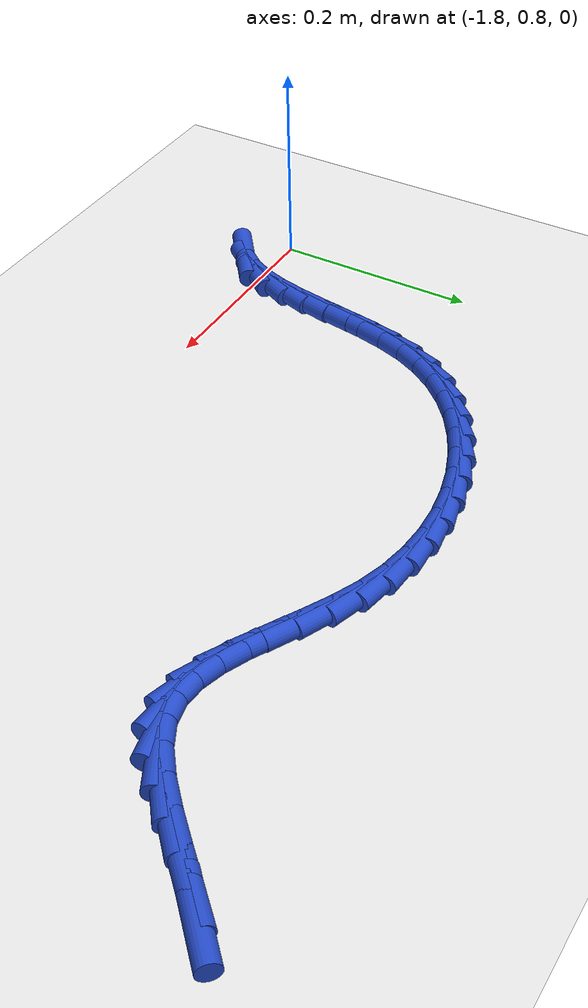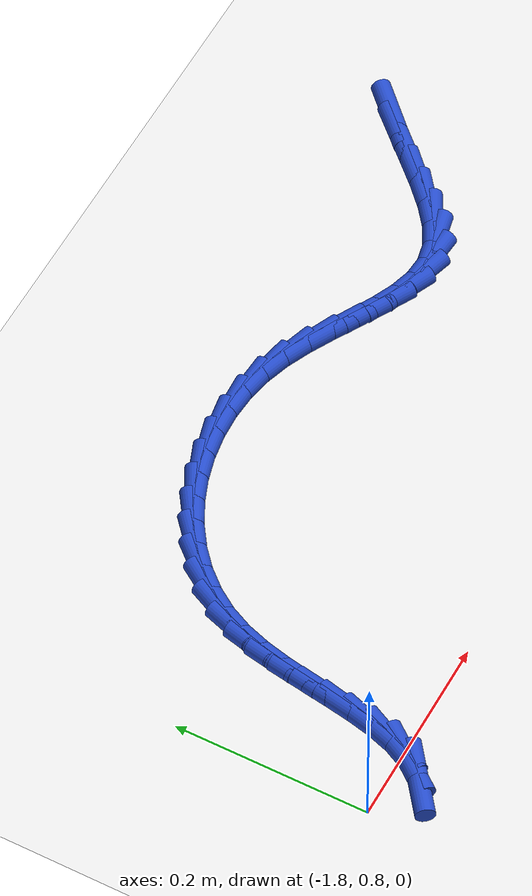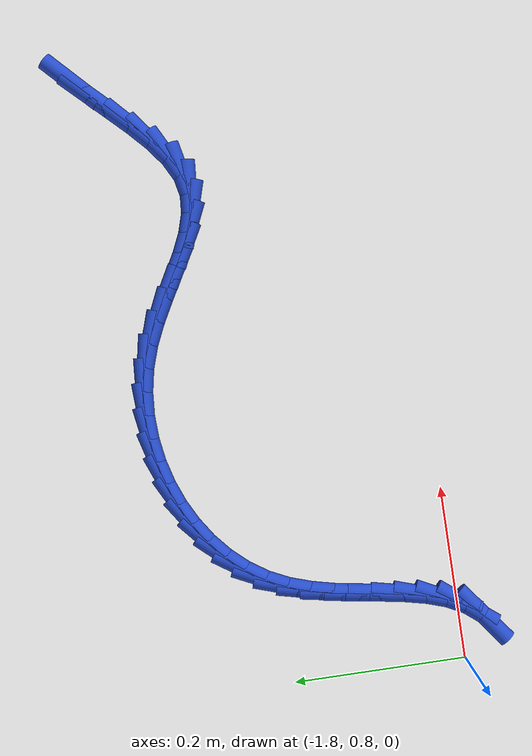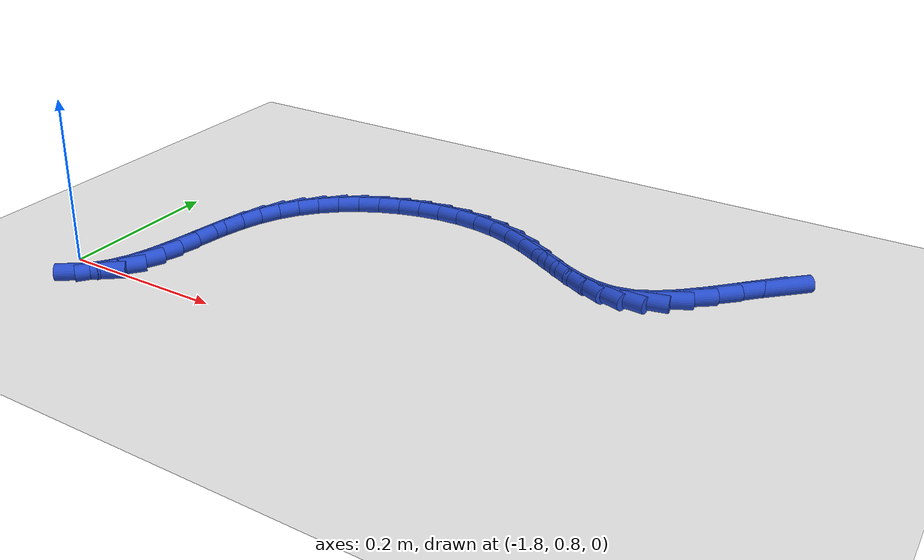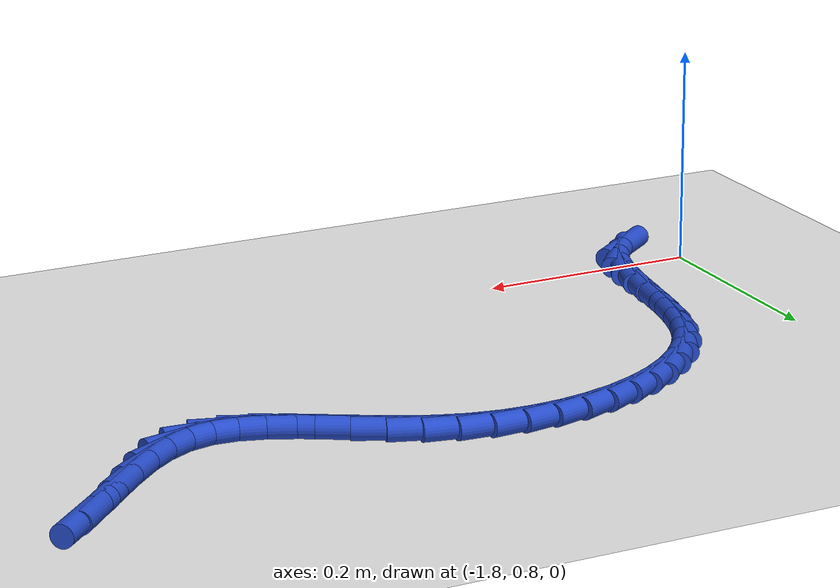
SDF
<sdf version="1.6">
 <world name="default">
  <model name="ground_plane">
   <static>1</static>
   <link name="link">
    <collision name="collision">
     <geometry><plane><normal>0 0 1</normal><size>100 100</size></plane></geometry>
     <surface><friction><ode><mu>100</mu><mu2>50</mu2></ode></friction></surface>
    </collision>
    <visual name="visual">
     <cast_shadows>0</cast_shadows>
     <geometry><plane><normal>0 0 1</normal><size>100 100</size></plane></geometry>
     <material>
      <script><uri>file://media/materials/scripts/gazebo.material</uri><name>Gazebo/WhiteGlow</name></script>
     </material>
    </visual>
   </link>
  </model>
  <model name="line">
   <link name="link_74">
    <pose>-1.0735224718287009 1.1547972547989758 0.01 0 1.57 0.7708935914080731</pose>
    <collision name="collision">
     <geometry><cylinder><radius>0.01</radius><length>0.08</length></cylinder></geometry>
    </collision>
    <visual name="visual">
     <material>
      <script><name>Gazebo/Blue</name><uri>file://media/materials/scripts/gazebo.material</uri></script>
     </material>
     <geometry><cylinder><radius>0.01</radius><length>0.08</length></cylinder></geometry>
    </visual>
   </link>
   <link name="link_75">
    <pose>-1.0930624352525116 1.1358160634239158 0.01 0 1.57 0.8080176315637548</pose>
    <collision name="collision">
     <geometry><cylinder><radius>0.01</radius><length>0.08</length></cylinder></geometry>
    </collision>
    <visual name="visual">
     <material>
      <script><name>Gazebo/Blue</name><uri>file://media/materials/scripts/gazebo.material</uri></script>
     </material>
     <geometry><cylinder><radius>0.01</radius><length>0.08</length></cylinder></geometry>
    </visual>
   </link>
   <link name="link_76">
    <pose>-1.1133947788227554 1.1145424548074574 0.01 0 1.57 0.8016299626486116</pose>
    <collision name="collision">
     <geometry><cylinder><radius>0.01</radius><length>0.08</length></cylinder></geometry>
    </collision>
    <visual name="visual">
     <material>
      <script><name>Gazebo/Blue</name><uri>file://media/materials/scripts/gazebo.material</uri></script>
     </material>
     <geometry><cylinder><radius>0.01</radius><length>0.08</length></cylinder></geometry>
    </visual>
   </link>
   <link name="link_77">
    <pose>-1.1343737628603825 1.0928711185263675 0.01 0 1.57 0.7540668357353255</pose>
    <collision name="collision">
     <geometry><cylinder><radius>0.01</radius><length>0.08</length></cylinder></geometry>
    </collision>
    <visual name="visual">
     <material>
      <script><name>Gazebo/Blue</name><uri>file://media/materials/scripts/gazebo.material</uri></script>
     </material>
     <geometry><cylinder><radius>0.01</radius><length>0.08</length></cylinder></geometry>
    </visual>
   </link>
   <link name="link_78">
    <pose>-1.1558536476863426 1.0726967441574162 0.01 0 1.57 0.6553080491785842</pose>
    <collision name="collision">
     <geometry><cylinder><radius>0.01</radius><length>0.08</length></cylinder></geometry>
    </collision>
    <visual name="visual">
     <material>
      <script><name>Gazebo/Blue</name><uri>file://media/materials/scripts/gazebo.material</uri></script>
     </material>
     <geometry><cylinder><radius>0.01</radius><length>0.08</length></cylinder></geometry>
    </visual>
   </link>
   <link name="link_79">
    <pose>-1.1776886936215845 1.0559140212773714 0.01 0 1.57 0.4807061477957808</pose>
    <collision name="collision">
     <geometry><cylinder><radius>0.01</radius><length>0.08</length></cylinder></geometry>
    </collision>
    <visual name="visual">
     <material>
      <script><name>Gazebo/Blue</name><uri>file://media/materials/scripts/gazebo.material</uri></script>
     </material>
     <geometry><cylinder><radius>0.01</radius><length>0.08</length></cylinder></geometry>
    </visual>
   </link>
   <link name="link_80">
    <pose>-1.1997331609870585 1.0444176394630023 0.01 0 1.57 0.20677118024986288</pose>
    <collision name="collision">
     <geometry><cylinder><radius>0.01</radius><length>0.08</length></cylinder></geometry>
    </collision>
    <visual name="visual">
     <material>
      <script><name>Gazebo/Blue</name><uri>file://media/materials/scripts/gazebo.material</uri></script>
     </material>
     <geometry><cylinder><radius>0.01</radius><length>0.08</length></cylinder></geometry>
    </visual>
   </link>
   <link name="link_81">
    <pose>-1.2218678625579902 1.0397744597150516 0.01 0 1.57 -0.07576717412405314</pose>
    <collision name="collision">
     <geometry><cylinder><radius>0.01</radius><length>0.08</length></cylinder></geometry>
    </collision>
    <visual name="visual">
     <material>
      <script><name>Gazebo/Blue</name><uri>file://media/materials/scripts/gazebo.material</uri></script>
     </material>
     <geometry><cylinder><radius>0.01</radius><length>0.08</length></cylinder></geometry>
    </visual>
   </link>
   <link name="link_82">
    <pose>-1.24414256292362 1.0414653877388156 0.01 0 1.57 -0.2885663111340343</pose>
    <collision name="collision">
     <geometry><cylinder><radius>0.01</radius><length>0.08</length></cylinder></geometry>
    </collision>
    <visual name="visual">
     <material>
      <script><name>Gazebo/Blue</name><uri>file://media/materials/scripts/gazebo.material</uri></script>
     </material>
     <geometry><cylinder><radius>0.01</radius><length>0.08</length></cylinder></geometry>
    </visual>
   </link>
   <link name="link_83">
    <pose>-1.2666732529106843 1.0481536702425271 0.01 0 1.57 -0.42433054549942584</pose>
    <collision name="collision">
     <geometry><cylinder><radius>0.01</radius><length>0.08</length></cylinder></geometry>
    </collision>
    <visual name="visual">
     <material>
      <script><name>Gazebo/Blue</name><uri>file://media/materials/scripts/gazebo.material</uri></script>
     </material>
     <geometry><cylinder><radius>0.01</radius><length>0.08</length></cylinder></geometry>
    </visual>
   </link>
   <link name="link_84">
    <pose>-1.2895760786914796 1.0585006359680453 0.01 0 1.57 -0.49631678908446214</pose>
    <collision name="collision">
     <geometry><cylinder><radius>0.01</radius><length>0.08</length></cylinder></geometry>
    </collision>
    <visual name="visual">
     <material>
      <script><name>Gazebo/Blue</name><uri>file://media/materials/scripts/gazebo.material</uri></script>
     </material>
     <geometry><cylinder><radius>0.01</radius><length>0.08</length></cylinder></geometry>
    </visual>
   </link>
   <link name="link_85">
    <pose>-1.312967186438303 1.0711676136572317 0.01 0 1.57 -0.5171515503069973</pose>
    <collision name="collision">
     <geometry><cylinder><radius>0.01</radius><length>0.08</length></cylinder></geometry>
    </collision>
    <visual name="visual">
     <material>
      <script><name>Gazebo/Blue</name><uri>file://media/materials/scripts/gazebo.material</uri></script>
     </material>
     <geometry><cylinder><radius>0.01</radius><length>0.08</length></cylinder></geometry>
    </visual>
   </link>
   <link name="link_86">
    <pose>-1.336962722323453 1.0848159320519464 0.01 0 1.57 -0.4933864481368131</pose>
    <collision name="collision">
     <geometry><cylinder><radius>0.01</radius><length>0.08</length></cylinder></geometry>
    </collision>
    <visual name="visual">
     <material>
      <script><name>Gazebo/Blue</name><uri>file://media/materials/scripts/gazebo.material</uri></script>
     </material>
     <geometry><cylinder><radius>0.01</radius><length>0.08</length></cylinder></geometry>
    </visual>
   </link>
   <link name="link_87">
    <pose>-1.3616788325192264 1.0981069198940505 0.01 0 1.57 -0.42598067674768475</pose>
    <collision name="collision">
     <geometry><cylinder><radius>0.01</radius><length>0.08</length></cylinder></geometry>
    </collision>
    <visual name="visual">
     <material>
      <script><name>Gazebo/Blue</name><uri>file://media/materials/scripts/gazebo.material</uri></script>
     </material>
     <geometry><cylinder><radius>0.01</radius><length>0.08</length></cylinder></geometry>
    </visual>
   </link>
   <link name="link_88">
    <pose>-1.38723166319792 1.1097019059254034 0.01 0 1.57 -0.3148389586312084</pose>
    <collision name="collision">
     <geometry><cylinder><radius>0.01</radius><length>0.08</length></cylinder></geometry>
    </collision>
    <visual name="visual">
     <material>
      <script><name>Gazebo/Blue</name><uri>file://media/materials/scripts/gazebo.material</uri></script>
     </material>
     <geometry><cylinder><radius>0.01</radius><length>0.08</length></cylinder></geometry>
    </visual>
   </link>
   <link name="link_89">
    <pose>-1.4137160454654953 1.1183271094655975 0.01 0 1.57 -0.18885814545173493</pose>
    <collision name="collision">
     <geometry><cylinder><radius>0.01</radius><length>0.08</length></cylinder></geometry>
    </collision>
    <visual name="visual">
     <material>
      <script><name>Gazebo/Blue</name><uri>file://media/materials/scripts/gazebo.material</uri></script>
     </material>
     <geometry><cylinder><radius>0.01</radius><length>0.08</length></cylinder></geometry>
    </visual>
   </link>
   <link name="link_90">
    <pose>-1.4409558598700893 1.1235336188708063 0.01 0 1.57 -0.06888871842945583</pose>
    <collision name="collision">
     <geometry><cylinder><radius>0.01</radius><length>0.08</length></cylinder></geometry>
    </collision>
    <visual name="visual">
     <material>
      <script><name>Gazebo/Blue</name><uri>file://media/materials/scripts/gazebo.material</uri></script>
     </material>
     <geometry><cylinder><radius>0.01</radius><length>0.08</length></cylinder></geometry>
    </visual>
   </link>
   <link name="link_91">
    <pose>-1.46858851334749 1.1254402139247506 0.01 0 1.57 0.0456436814741091</pose>
    <collision name="collision">
     <geometry><cylinder><radius>0.01</radius><length>0.08</length></cylinder></geometry>
    </collision>
    <visual name="visual">
     <material>
      <script><name>Gazebo/Blue</name><uri>file://media/materials/scripts/gazebo.material</uri></script>
     </material>
     <geometry><cylinder><radius>0.01</radius><length>0.08</length></cylinder></geometry>
    </visual>
   </link>
   <link name="link_92">
    <pose>-1.4962477360878363 1.12417686772135 0.01 0 1.57 0.15623420661126494</pose>
    <collision name="collision">
     <geometry><cylinder><radius>0.01</radius><length>0.08</length></cylinder></geometry>
    </collision>
    <visual name="visual">
     <material>
      <script><name>Gazebo/Blue</name><uri>file://media/materials/scripts/gazebo.material</uri></script>
     </material>
     <geometry><cylinder><radius>0.01</radius><length>0.08</length></cylinder></geometry>
    </visual>
   </link>
   <link name="link_93">
    <pose>-1.5235672582812674 1.1198735533545239 0.01 0 1.57 0.2646799480104185</pose>
    <collision name="collision">
     <geometry><cylinder><radius>0.01</radius><length>0.08</length></cylinder></geometry>
    </collision>
    <visual name="visual">
     <material>
      <script><name>Gazebo/Blue</name><uri>file://media/materials/scripts/gazebo.material</uri></script>
     </material>
     <geometry><cylinder><radius>0.01</radius><length>0.08</length></cylinder></geometry>
    </visual>
   </link>
   <link name="link_94">
    <pose>-1.5501808101179215 1.1126602439181914 0.01 0 1.57 0.3729505459480875</pose>
    <collision name="collision">
     <geometry><cylinder><radius>0.01</radius><length>0.08</length></cylinder></geometry>
    </collision>
    <visual name="visual">
     <material>
      <script><name>Gazebo/Blue</name><uri>file://media/materials/scripts/gazebo.material</uri></script>
     </material>
     <geometry><cylinder><radius>0.01</radius><length>0.08</length></cylinder></geometry>
    </visual>
   </link>
   <link name="link_95">
    <pose>-1.575722121787937 1.1026669125062722 0.01 0 1.57 0.4831024863905607</pose>
    <collision name="collision">
     <geometry><cylinder><radius>0.01</radius><length>0.08</length></cylinder></geometry>
    </collision>
    <visual name="visual">
     <material>
      <script><name>Gazebo/Blue</name><uri>file://media/materials/scripts/gazebo.material</uri></script>
     </material>
     <geometry><cylinder><radius>0.01</radius><length>0.08</length></cylinder></geometry>
    </visual>
   </link>
   <link name="link_96">
    <pose>-1.5998249234814534 1.0900235322126854 0.01 0 1.57 0.5972012273908236</pose>
    <collision name="collision">
     <geometry><cylinder><radius>0.01</radius><length>0.08</length></cylinder></geometry>
    </collision>
    <visual name="visual">
     <material>
      <script><name>Gazebo/Blue</name><uri>file://media/materials/scripts/gazebo.material</uri></script>
     </material>
     <geometry><cylinder><radius>0.01</radius><length>0.08</length></cylinder></geometry>
    </visual>
   </link>
   <link name="link_97">
    <pose>-1.622122945388608 1.07486007613135 0.01 0 1.57 0.717208475605132</pose>
    <collision name="collision">
     <geometry><cylinder><radius>0.01</radius><length>0.08</length></cylinder></geometry>
    </collision>
    <visual name="visual">
     <material>
      <script><name>Gazebo/Blue</name><uri>file://media/materials/scripts/gazebo.material</uri></script>
     </material>
     <geometry><cylinder><radius>0.01</radius><length>0.08</length></cylinder></geometry>
    </visual>
   </link>
   <link name="link_98">
    <pose>-1.6422499176995402 1.057306517356186 0.01 0 1.57 0.8447891120028037</pose>
    <collision name="collision">
     <geometry><cylinder><radius>0.01</radius><length>0.08</length></cylinder></geometry>
    </collision>
    <visual name="visual">
     <material>
      <script><name>Gazebo/Blue</name><uri>file://media/materials/scripts/gazebo.material</uri></script>
     </material>
     <geometry><cylinder><radius>0.01</radius><length>0.08</length></cylinder></geometry>
    </visual>
   </link>
   <link name="link_99">
    <pose>-1.6598395706043891 1.0374928289811125 0.01 0 1.57 0.9810028139621465</pose>
    <collision name="collision">
     <geometry><cylinder><radius>0.01</radius><length>0.08</length></cylinder></geometry>
    </collision>
    <visual name="visual">
     <material>
      <script><name>Gazebo/Blue</name><uri>file://media/materials/scripts/gazebo.material</uri></script>
     </material>
     <geometry><cylinder><radius>0.01</radius><length>0.08</length></cylinder></geometry>
    </visual>
   </link>
   <link name="link_100">
    <pose>-1.6745256342932928 1.0155489841000485 0.01 0 1.57 1.1248142707986852</pose>
    <collision name="collision">
     <geometry><cylinder><radius>0.01</radius><length>0.08</length></cylinder></geometry>
    </collision>
    <visual name="visual">
     <material>
      <script><name>Gazebo/Blue</name><uri>file://media/materials/scripts/gazebo.material</uri></script>
     </material>
     <geometry><cylinder><radius>0.01</radius><length>0.08</length></cylinder></geometry>
    </visual>
   </link>
   <link name="link_101">
    <pose>-1.6859685428202678 0.9916153095414554 0.01 0 1.57 1.2518827965363</pose>
    <collision name="collision">
     <geometry><cylinder><radius>0.01</radius><length>0.08</length></cylinder></geometry>
    </collision>
    <visual name="visual">
     <material>
      <script><name>Gazebo/Blue</name><uri>file://media/materials/scripts/gazebo.material</uri></script>
     </material>
     <geometry><cylinder><radius>0.01</radius><length>0.08</length></cylinder></geometry>
    </visual>
   </link>
   <link name="link_102">
    <pose>-1.6944076263756809 0.9660565841812594 0.01 0 1.57 1.3405869892472908</pose>
    <collision name="collision">
     <geometry><cylinder><radius>0.01</radius><length>0.08</length></cylinder></geometry>
    </collision>
    <visual name="visual">
     <material>
      <script><name>Gazebo/Blue</name><uri>file://media/materials/scripts/gazebo.material</uri></script>
     </material>
     <geometry><cylinder><radius>0.01</radius><length>0.08</length></cylinder></geometry>
    </visual>
   </link>
   <link name="link_103">
    <pose>-1.700642157647981 0.9394546901584209 0.01 0 1.57 1.3933339447323774</pose>
    <collision name="collision">
     <geometry><cylinder><radius>0.01</radius><length>0.08</length></cylinder></geometry>
    </collision>
    <visual name="visual">
     <material>
      <script><name>Gazebo/Blue</name><uri>file://media/materials/scripts/gazebo.material</uri></script>
     </material>
     <geometry><cylinder><radius>0.01</radius><length>0.08</length></cylinder></geometry>
    </visual>
   </link>
   <link name="link_104">
    <pose>-1.705494321144945 0.9124003930789606 0.01 0 1.57 1.4126688868766377</pose>
    <collision name="collision">
     <geometry><cylinder><radius>0.01</radius><length>0.08</length></cylinder></geometry>
    </collision>
    <visual name="visual">
     <material>
      <script><name>Gazebo/Blue</name><uri>file://media/materials/scripts/gazebo.material</uri></script>
     </material>
     <geometry><cylinder><radius>0.01</radius><length>0.08</length></cylinder></geometry>
    </visual>
   </link>
   <link name="link_105">
    <pose>-1.7097863013743504 0.8854844585489006 0.01 0 1.57 1.3986146203841454</pose>
    <collision name="collision">
     <geometry><cylinder><radius>0.01</radius><length>0.08</length></cylinder></geometry>
    </collision>
    <visual name="visual">
     <material>
      <script><name>Gazebo/Blue</name><uri>file://media/materials/scripts/gazebo.material</uri></script>
     </material>
     <geometry><cylinder><radius>0.01</radius><length>0.08</length></cylinder></geometry>
    </visual>
   </link>
   <link name="link_106">
    <pose>-1.714340282843974 0.8592976521742615 0.01 0 1.57 1.3478323334472617</pose>
    <collision name="collision">
     <geometry><cylinder><radius>0.01</radius><length>0.08</length></cylinder></geometry>
    </collision>
    <visual name="visual">
     <material>
      <script><name>Gazebo/Blue</name><uri>file://media/materials/scripts/gazebo.material</uri></script>
     </material>
     <geometry><cylinder><radius>0.01</radius><length>0.08</length></cylinder></geometry>
    </visual>
   </link>
   <link name="link_107">
    <pose>-1.7199784500615936 0.8344307395610651 0.01 0 1.57 1.2532680598797996</pose>
    <collision name="collision">
     <geometry><cylinder><radius>0.01</radius><length>0.08</length></cylinder></geometry>
    </collision>
    <visual name="visual">
     <material>
      <script><name>Gazebo/Blue</name><uri>file://media/materials/scripts/gazebo.material</uri></script>
     </material>
     <geometry><cylinder><radius>0.01</radius><length>0.08</length></cylinder></geometry>
    </visual>
   </link>
   <link name="link_108">
    <pose>-1.7275229875349862 0.811474486315333 0.01 0 1.57 1.1053638174751952</pose>
    <collision name="collision">
     <geometry><cylinder><radius>0.01</radius><length>0.08</length></cylinder></geometry>
    </collision>
    <visual name="visual">
     <material>
      <script><name>Gazebo/Blue</name><uri>file://media/materials/scripts/gazebo.material</uri></script>
     </material>
     <geometry><cylinder><radius>0.01</radius><length>0.08</length></cylinder></geometry>
    </visual>
   </link>
   <link name="link_109">
    <pose>-1.737796079771929 0.7910196580430858 0.01 0 1.57 0.8983873534197166</pose>
    <collision name="collision">
     <geometry><cylinder><radius>0.01</radius><length>0.08</length></cylinder></geometry>
    </collision>
    <visual name="visual">
     <material>
      <script><name>Gazebo/Blue</name><uri>file://media/materials/scripts/gazebo.material</uri></script>
     </material>
     <geometry><cylinder><radius>0.01</radius><length>0.08</length></cylinder></geometry>
    </visual>
   </link>
   <link name="link_110">
    <pose>-1.7516199112801996 0.7736570203503452 0.01 0 1.57 0.6475978409784574</pose>
    <collision name="collision">
     <geometry><cylinder><radius>0.01</radius><length>0.08</length></cylinder></geometry>
    </collision>
    <visual name="visual">
     <material>
      <script><name>Gazebo/Blue</name><uri>file://media/materials/scripts/gazebo.material</uri></script>
     </material>
     <geometry><cylinder><radius>0.01</radius><length>0.08</length></cylinder></geometry>
    </visual>
   </link>
  </model>
 </world>
</sdf>
